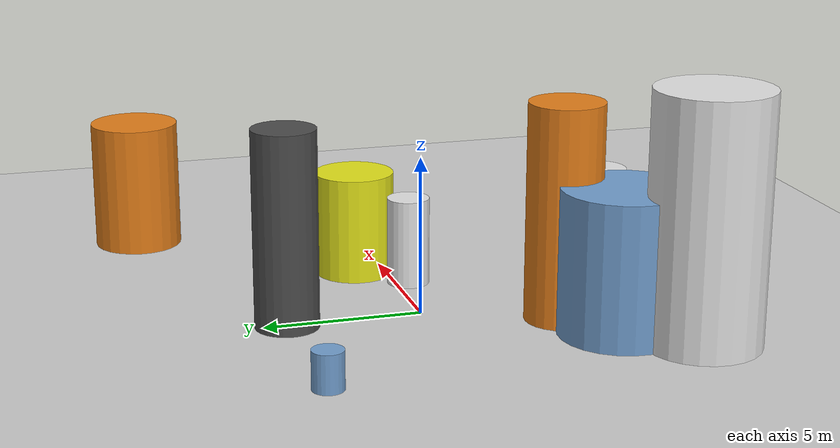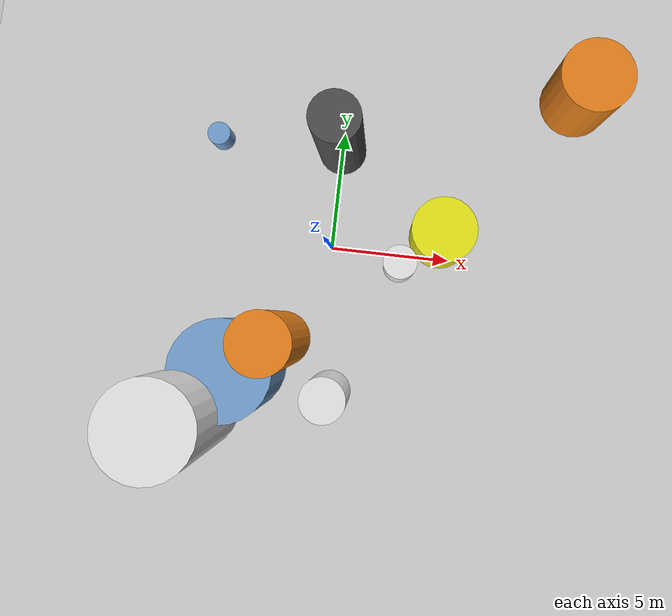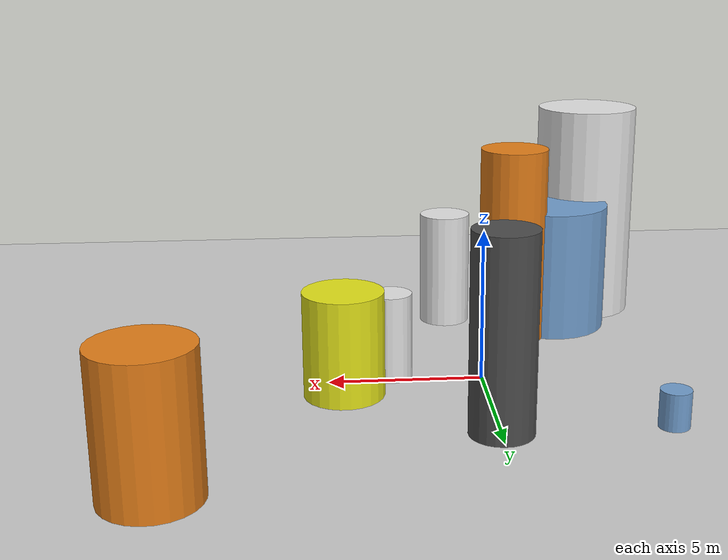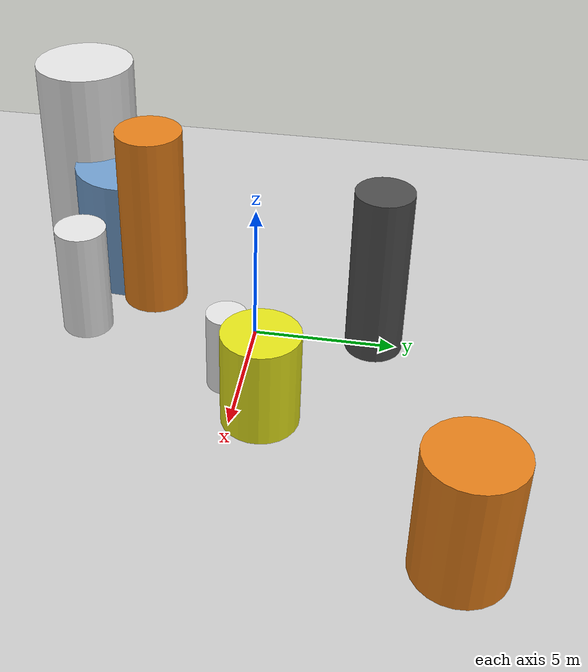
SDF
<?xml version='1.0'?>
<sdf version='1.6'>
  <world name='default'>
    <!-- Sun light -->
    <light name='sun' type='directional'>
      <cast_shadows>1</cast_shadows>
      <pose>0 0 10 0 0 0</pose>
      <diffuse>0.8 0.8 0.8 1</diffuse>
      <specular>0.2 0.2 0.2 1</specular>
      <attenuation>
        <range>1000</range>
        <constant>0.9</constant>
        <linear>0.01</linear>
        <quadratic>0.001</quadratic>
      </attenuation>
      <direction>-0.5 0.1 -0.9</direction>
    </light>

    <!-- Ground plane -->
    <model name='ground_plane'>
      <static>1</static>
      <link name='link'>
        <collision name='collision'>
          <geometry>
            <plane>
              <normal>0 0 1</normal>
              <size>100 100</size>
            </plane>
          </geometry>
          <surface>
            <contact>
              <collide_bitmask>65535</collide_bitmask>
              <ode/>
            </contact>
            <friction>
              <ode>
                <mu>100</mu>
                <mu2>50</mu2>
              </ode>
              <torsional><ode/></torsional>
            </friction>
            <bounce/>
          </surface>
          <max_contacts>10</max_contacts>
        </collision>
        <visual name='visual'>
          <cast_shadows>0</cast_shadows>
          <geometry>
            <plane>
              <normal>0 0 1</normal>
              <size>100 100</size>
            </plane>
          </geometry>
          <material>
            <script>
              <uri>file://media/materials/scripts/gazebo.material</uri>
              <n>Gazebo/Grey</n>
            </script>
          </material>
        </visual>
      </link>
    </model>

    <!-- Environment -->
    <magnetic_field>6e-06 2.3e-05 -4.2e-05</magnetic_field>
    <atmosphere type='adiabatic'/>
    <physics name='default_physics' default='0' type='ode'>
      <gravity>0 0 -9.8</gravity>
      <max_step_size>0.004</max_step_size>
      <real_time_factor>1</real_time_factor>
      <real_time_update_rate>250</real_time_update_rate>
    </physics>
    <scene>
      <ambient>0.4 0.4 0.4 1</ambient>
      <background>0.7 0.7 0.7 1</background>
      <shadows>1</shadows>
    </scene>
    <wind/>
    <spherical_coordinates>
      <surface_model>EARTH_WGS84</surface_model>
      <latitude_deg>0</latitude_deg>
      <longitude_deg>0</longitude_deg>
      <elevation>0</elevation>
      <heading_deg>0</heading_deg>
    </spherical_coordinates>

    <!-- ============ OBSTACLES (9) ============ -->
    <model name='obs_00'>
      <static>1</static>
      <link name='link'>
        <visual name='visual'>
          <geometry>
            <cylinder>
              <radius>1.9772</radius>
              <length>4.5484</length>
            </cylinder>
          </geometry>
          <material>
            <script>
              <n>Gazebo/Blue</n>
              <uri>file://media/materials/scripts/gazebo.material</uri>
            </script>
            <ambient>0.447 0.624 0.812 1</ambient>
          </material>
        </visual>
        <collision name='collision'>
          <geometry>
            <cylinder>
              <radius>1.9772</radius>
              <length>4.5484</length>
            </cylinder>
          </geometry>
          <max_contacts>10</max_contacts>
          <surface>
            <contact><ode/></contact>
            <bounce/>
            <friction>
              <ode><mu>1</mu><mu2>1</mu2></ode>
              <torsional><ode/></torsional>
            </friction>
          </surface>
        </collision>
      </link>
      <pose>-3.3069 -5.3500 2.2742 0 0 2.6881</pose>
    </model>

    <model name='obs_01'>
      <static>1</static>
      <link name='link'>
        <visual name='visual'>
          <geometry>
            <cylinder>
              <radius>0.4808</radius>
              <length>1.1866</length>
            </cylinder>
          </geometry>
          <material>
            <script>
              <n>Gazebo/Blue</n>
              <uri>file://media/materials/scripts/gazebo.material</uri>
            </script>
            <ambient>0.447 0.624 0.812 1</ambient>
          </material>
        </visual>
        <collision name='collision'>
          <geometry>
            <cylinder>
              <radius>0.4808</radius>
              <length>1.1866</length>
            </cylinder>
          </geometry>
          <max_contacts>10</max_contacts>
          <surface>
            <contact><ode/></contact>
            <bounce/>
            <friction>
              <ode><mu>1</mu><mu2>1</mu2></ode>
              <torsional><ode/></torsional>
            </friction>
          </surface>
        </collision>
      </link>
      <pose>-5.2088 4.2128 0.5933 0 0 1.9785</pose>
    </model>

    <model name='obs_02'>
      <static>1</static>
      <link name='link'>
        <visual name='visual'>
          <geometry>
            <cylinder>
              <radius>1.0051</radius>
              <length>6.2158</length>
            </cylinder>
          </geometry>
          <material>
            <script>
              <n>Gazebo/DarkGrey</n>
              <uri>file://media/materials/scripts/gazebo.material</uri>
            </script>
            <ambient>0.3 0.3 0.3 1</ambient>
          </material>
        </visual>
        <collision name='collision'>
          <geometry>
            <cylinder>
              <radius>1.0051</radius>
              <length>6.2158</length>
            </cylinder>
          </geometry>
          <max_contacts>10</max_contacts>
          <surface>
            <contact><ode/></contact>
            <bounce/>
            <friction>
              <ode><mu>1</mu><mu2>1</mu2></ode>
              <torsional><ode/></torsional>
            </friction>
          </surface>
        </collision>
      </link>
      <pose>-0.0157 4.2432 3.1079 0 0 0.7079</pose>
    </model>

    <model name='obs_03'>
      <static>1</static>
      <link name='link'>
        <visual name='visual'>
          <geometry>
            <cylinder>
              <radius>1.2988</radius>
              <length>3.4328</length>
            </cylinder>
          </geometry>
          <material>
            <script>
              <n>Gazebo/Yellow</n>
              <uri>file://media/materials/scripts/gazebo.material</uri>
            </script>
            <ambient>0.9 0.9 0.1 1</ambient>
          </material>
        </visual>
        <collision name='collision'>
          <geometry>
            <cylinder>
              <radius>1.2988</radius>
              <length>3.4328</length>
            </cylinder>
          </geometry>
          <max_contacts>10</max_contacts>
          <surface>
            <contact><ode/></contact>
            <bounce/>
            <friction>
              <ode><mu>1</mu><mu2>1</mu2></ode>
              <torsional><ode/></torsional>
            </friction>
          </surface>
        </collision>
      </link>
      <pose>4.5204 0.9486 1.7164 0 0 0.3964</pose>
    </model>

    <model name='obs_04'>
      <static>1</static>
      <link name='link'>
        <visual name='visual'>
          <geometry>
            <cylinder>
              <radius>0.8988</radius>
              <length>4.0741</length>
            </cylinder>
          </geometry>
          <material>
            <script>
              <n>Gazebo/White</n>
              <uri>file://media/materials/scripts/gazebo.material</uri>
            </script>
            <ambient>0.9 0.9 0.9 1</ambient>
          </material>
        </visual>
        <collision name='collision'>
          <geometry>
            <cylinder>
              <radius>0.8988</radius>
              <length>4.0741</length>
            </cylinder>
          </geometry>
          <max_contacts>10</max_contacts>
          <surface>
            <contact><ode/></contact>
            <bounce/>
            <friction>
              <ode><mu>1</mu><mu2>1</mu2></ode>
              <torsional><ode/></torsional>
            </friction>
          </surface>
        </collision>
      </link>
      <pose>0.5888 -6.0454 2.0371 0 0 2.8020</pose>
    </model>

    <model name='obs_05'>
      <static>1</static>
      <link name='link'>
        <visual name='visual'>
          <geometry>
            <cylinder>
              <radius>1.4668</radius>
              <length>4.3000</length>
            </cylinder>
          </geometry>
          <material>
            <script>
              <n>Gazebo/Orange</n>
              <uri>file://media/materials/scripts/gazebo.material</uri>
            </script>
            <ambient>0.9 0.5 0.1 1</ambient>
          </material>
        </visual>
        <collision name='collision'>
          <geometry>
            <cylinder>
              <radius>1.4668</radius>
              <length>4.3000</length>
            </cylinder>
          </geometry>
          <max_contacts>10</max_contacts>
          <surface>
            <contact><ode/></contact>
            <bounce/>
            <friction>
              <ode><mu>1</mu><mu2>1</mu2></ode>
              <torsional><ode/></torsional>
            </friction>
          </surface>
        </collision>
      </link>
      <pose>9.7169 7.4492 2.1500 0 0 1.7639</pose>
    </model>

    <model name='obs_06'>
      <static>1</static>
      <link name='link'>
        <visual name='visual'>
          <geometry>
            <cylinder>
              <radius>1.8033</radius>
              <length>7.7759</length>
            </cylinder>
          </geometry>
          <material>
            <script>
              <n>Gazebo/White</n>
              <uri>file://media/materials/scripts/gazebo.material</uri>
            </script>
            <ambient>0.9 0.9 0.9 1</ambient>
          </material>
        </visual>
        <collision name='collision'>
          <geometry>
            <cylinder>
              <radius>1.8033</radius>
              <length>7.7759</length>
            </cylinder>
          </geometry>
          <max_contacts>10</max_contacts>
          <surface>
            <contact><ode/></contact>
            <bounce/>
            <friction>
              <ode><mu>1</mu><mu2>1</mu2></ode>
              <torsional><ode/></torsional>
            </friction>
          </surface>
        </collision>
      </link>
      <pose>-4.8886 -7.2772 3.8879 0 0 0.0402</pose>
    </model>

    <model name='obs_07'>
      <static>1</static>
      <link name='link'>
        <visual name='visual'>
          <geometry>
            <cylinder>
              <radius>0.6860</radius>
              <length>2.8769</length>
            </cylinder>
          </geometry>
          <material>
            <script>
              <n>Gazebo/White</n>
              <uri>file://media/materials/scripts/gazebo.material</uri>
            </script>
            <ambient>0.9 0.9 0.9 1</ambient>
          </material>
        </visual>
        <collision name='collision'>
          <geometry>
            <cylinder>
              <radius>0.6860</radius>
              <length>2.8769</length>
            </cylinder>
          </geometry>
          <max_contacts>10</max_contacts>
          <surface>
            <contact><ode/></contact>
            <bounce/>
            <friction>
              <ode><mu>1</mu><mu2>1</mu2></ode>
              <torsional><ode/></torsional>
            </friction>
          </surface>
        </collision>
      </link>
      <pose>2.9411 -0.4540 1.4384 0 0 0.5479</pose>
    </model>

    <model name='obs_08'>
      <static>1</static>
      <link name='link'>
        <visual name='visual'>
          <geometry>
            <cylinder>
              <radius>1.1820</radius>
              <length>6.8561</length>
            </cylinder>
          </geometry>
          <material>
            <script>
              <n>Gazebo/Orange</n>
              <uri>file://media/materials/scripts/gazebo.material</uri>
            </script>
            <ambient>0.9 0.5 0.1 1</ambient>
          </material>
        </visual>
        <collision name='collision'>
          <geometry>
            <cylinder>
              <radius>1.1820</radius>
              <length>6.8561</length>
            </cylinder>
          </geometry>
          <max_contacts>10</max_contacts>
          <surface>
            <contact><ode/></contact>
            <bounce/>
            <friction>
              <ode><mu>1</mu><mu2>1</mu2></ode>
              <torsional><ode/></torsional>
            </friction>
          </surface>
        </collision>
      </link>
      <pose>-1.6395 -4.0696 3.4280 0 0 1.5268</pose>
    </model>

    <!-- GUI camera -->
    <gui fullscreen='0'>
      <camera name='user_camera'>
        <pose>-15 0 18 0 0.85 0.15</pose>
        <view_controller>orbit</view_controller>
        <projection_type>perspective</projection_type>
      </camera>
    </gui>
  </world>
</sdf>
